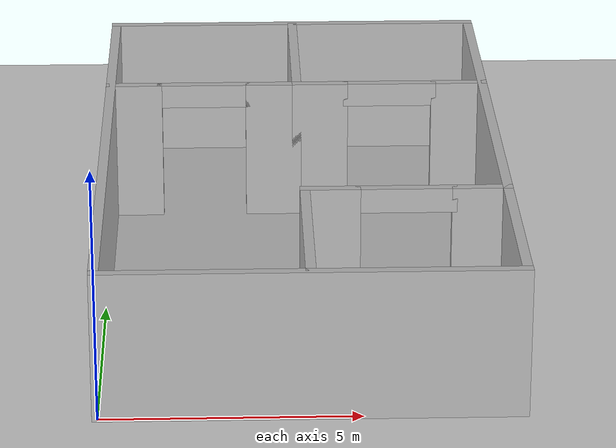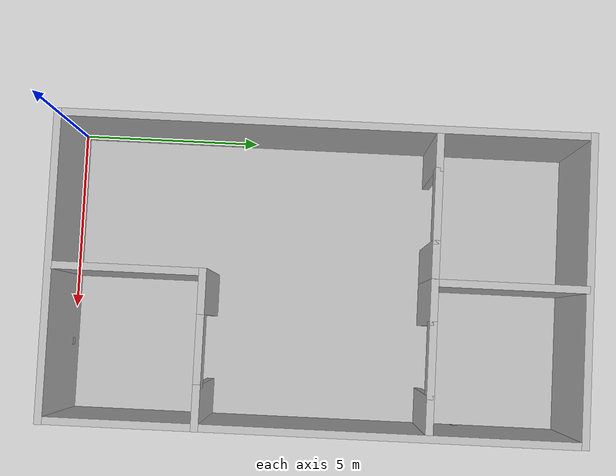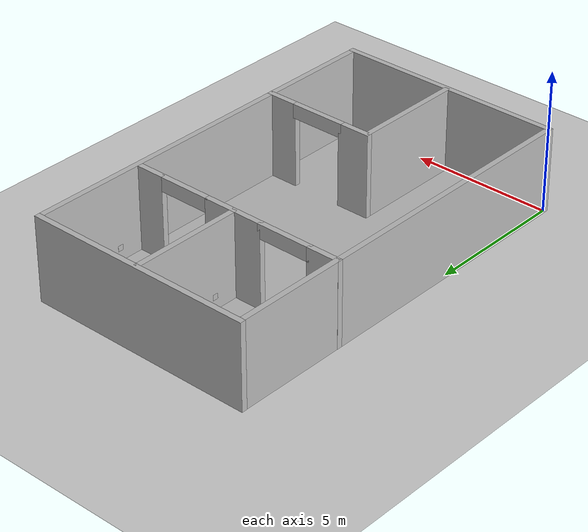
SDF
<sdf version="1.7">
 <world name="nre_home">
  <scene><shadows>0</shadows></scene>
  <physics type="ode">
   <gravity>0 0 -9.81</gravity>
   <ode>
    <solver><type>quick</type><iters>20</iters><sor>1.0</sor></solver>
    <constraints>
     <cfm>0.0</cfm>
     <erp>1.0</erp>
     <contact_max_correcting_vel>100.0</contact_max_correcting_vel>
     <contact_surface_layer>0.0</contact_surface_layer>
    </constraints>
   </ode>
   <real_time_update_rate>1000</real_time_update_rate>
   <max_step_size>0.001</max_step_size>
  </physics>
  <include><uri>model://sun</uri></include>
  <light type="directional" name="directional1">
   <pose>0 14 5 -1 0.4 1.5</pose>
   <diffuse>50 50 50 1</diffuse>
   <specular>.1 .1 .1 1</specular>
   <attenuation>
    <range>20</range>
    <linear>0.2</linear>
    <constant>0.8</constant>
    <quadratic>0.01</quadratic>
   </attenuation>
   <cast_shadows>false</cast_shadows>
  </light>
  <light type="directional" name="directional2">
   <pose>8 0 5 1 0.4 0</pose>
   <diffuse>50 50 50 1</diffuse>
   <specular>.1 .1 .1 1</specular>
   <attenuation>
    <range>20</range>
    <linear>0.2</linear>
    <constant>0.8</constant>
    <quadratic>0.01</quadratic>
   </attenuation>
   <cast_shadows>false</cast_shadows>
  </light>
  <light type="directional" name="directional3">
   <pose>0 0 5 0.75 0 -0.5</pose>
   <diffuse>25 25 25 1</diffuse>
   <specular>.1 .1 .1 1</specular>
   <attenuation>
    <range>20</range>
    <linear>0.2</linear>
    <constant>0.8</constant>
    <quadratic>0.01</quadratic>
   </attenuation>
   <cast_shadows>false</cast_shadows>
  </light>
  <light type="directional" name="directional4">
   <pose>8 14 5 -1 0.4 0</pose>
   <diffuse>25 25 25 1</diffuse>
   <specular>.1 .1 .1 1</specular>
   <attenuation>
    <range>20</range>
    <linear>0.2</linear>
    <constant>0.8</constant>
    <quadratic>0.01</quadratic>
   </attenuation>
   <cast_shadows>false</cast_shadows>
  </light>
  <include><uri>model://ground_plane</uri></include>
  <include><uri>model://new_wall_0</uri><name>ext_wall_0</name><pose>4 0 0 0 0 0</pose></include>
  <include><uri>model://new_wall_0</uri><name>ext_wall_1</name><pose>4 14 0 0 0 0</pose></include>
  <include><uri>model://new_wall_1</uri><name>ext_wall_2</name><pose>0 7 0 0 0 1.57</pose></include>
  <include><uri>model://new_wall_1</uri><name>ext_wall_3</name><pose>8 7 0 0 0 1.57</pose></include>
  <include><uri>model://new_wall_2</uri><name>int_wall_0</name><pose>4 12 0 0 0 1.57</pose></include>
  <include><uri>model://new_wall_2</uri><name>int_wall_1</name><pose>4 2 0 0 0 1.57</pose></include>
  <include><uri>model://new_door_wall</uri><name>door_wall_1</name><pose>4.5 4 0 0 0 0</pose></include>
  <include><uri>model://new_door_wall</uri><name>door_wall_2</name><pose>7.5 4 0 0 0 0</pose></include>
  <include><uri>model://new_door_wall</uri><name>door_wall_3</name><pose>4.5 10 0 0 0 0</pose></include>
  <include><uri>model://new_door_wall</uri><name>door_wall_4</name><pose>7.5 10 0 0 0 0</pose></include>
  <include><uri>model://new_door_wall</uri><name>door_wall_5</name><pose>0.5 10 0 0 0 0</pose></include>
  <include><uri>model://new_door_wall</uri><name>door_wall_6</name><pose>3.5 10 0 0 0 0</pose></include>
  <include><uri>model://new_door_up</uri><name>door_up_0</name><pose>6 4 0 0 0 0</pose></include>
  <include><uri>model://new_door_up</uri><name>door_up_1</name><pose>2 10 0 0 0 0</pose></include>
  <include><uri>model://new_door_up</uri><name>door_up_2</name><pose>6 10 0 0 0 0</pose></include>
  <include><uri>model://marker1</uri><name>marker1</name><pose>3.87 11 0 0 0 1.57</pose></include>
  <include><uri>model://marker2</uri><name>marker2</name><pose>7.87 11 0 0 0 1.57</pose></include>
  <include><uri>model://marker3</uri><name>marker3</name><pose>6 0.1 0 0 0 3.14</pose></include>
  <include><uri>model://floor</uri><name>ground_floor</name><pose>4 7 0.006 0 0 0</pose></include>
 </world>
</sdf>

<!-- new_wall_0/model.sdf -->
<sdf version="1.7">

    <model name="new_wall_0">
        <static>true</static>
        <link name="link">
            <pose>0 0 1.5 0 0 0</pose>
            <collision name="collision">
                <geometry>
                    <box>
                        <size>8.2 0.2 3.0</size>
                    </box>
                </geometry>
            </collision>

            <visual name="visual">
                <cast_shadows>false</cast_shadows>
                <geometry>
                    <box>
                        <size>8.2 0.2 3.0</size>
                    </box>
                </geometry>
            </visual>
        </link>
    </model>

</sdf>

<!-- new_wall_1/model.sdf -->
<sdf version="1.7">

    <model name="new_wall_1">
        <static>true</static>
        <link name="link">
            <pose>0 0 1.5 0 0 0</pose>
            <collision name="collision">
                <geometry>
                    <box>
                        <size>13.8 0.2 3.0</size>
                    </box>
                </geometry>
            </collision>

            <visual name="visual">
                <cast_shadows>false</cast_shadows>
                <geometry>
                    <box>
                        <size>13.8 0.2 3.0</size>
                    </box>
                </geometry>

            </visual>
        </link>
    </model>

</sdf>

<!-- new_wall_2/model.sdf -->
<sdf version="1.7">

    <model name="new_wall_2">
        <static>true</static>
        <link name="link">
            <pose>0 0 1.5 0 0 0</pose>
            <collision name="collision">
                <geometry>
                    <box>
                        <size>4 0.2 3.0</size>
                    </box>
                </geometry>
            </collision>

            <visual name="visual">
                <cast_shadows>false</cast_shadows>
                <geometry>
                    <box>
                        <size>4 0.2 3.0</size>
                    </box>
                </geometry>
            </visual>
        </link>
    </model>

</sdf>

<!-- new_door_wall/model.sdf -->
<sdf version="1.7">

    <model name="door_wall_1">
        <static>true</static>
        <link name="link">
            <pose>0 0 1.5 0 0 0</pose>
            <collision name="collision">
                <geometry>
                    <box>
                        <size>1.2 0.2 3.0</size>
                    </box>
                </geometry>
            </collision>

            <visual name="visual">
                <cast_shadows>false</cast_shadows>
                <geometry>
                    <box>
                        <size>1.2 0.2 3.0</size>
                    </box>
                </geometry>
            </visual>
        </link>
    </model>

</sdf>

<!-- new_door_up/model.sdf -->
<sdf version="1.7">

    <model name="new_door_up">
        <static>true</static>
        <link name="link">
            <pose>0 0 2.75 0 0 0</pose>
            <collision name="collision">
                <geometry>
                    <box>
                        <size>2.0 0.2 0.5</size>
                    </box>
                </geometry>
            </collision>

            <visual name="visual">
                <cast_shadows>false</cast_shadows>
                <geometry>
                    <box>
                        <size>2.0 0.2 0.5</size>
                    </box>
                </geometry>
            </visual>
        </link>
    </model>

</sdf>

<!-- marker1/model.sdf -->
<sdf version="1.7">

    <model name="maker_tile_1">
        <static>true</static>
        <link name="link">
            <pose>0 0 0.5 0 0 0</pose>
            <collision name="collision">
                <geometry>
                    <box>
                        <size>0.2 0.001 0.2</size>
                    </box>
                </geometry>
            </collision>

            <visual name="visual">
                <cast_shadows>false</cast_shadows>
                <geometry>
                    <box>
                        <size>0.2 0.001 0.2</size>
                    </box>
                </geometry>
                <material>
                    <script>
                        <uri>model://marker1/materials/scripts</uri>
                        <uri>model://marker1/materials/textures</uri>
                        <name>vrc/markerMaterial</name>
                    </script>
                </material>
            </visual>
        </link>
    </model>

</sdf>

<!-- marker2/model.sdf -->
<sdf version="1.7">

    <model name="maker_tile_2">
        <static>true</static>
        <link name="link">
            <pose>0 0 0.5 0 0 0</pose>
            <collision name="collision">
                <geometry>
                    <box>
                        <size>0.2 0.001 0.2</size>
                    </box>
                </geometry>
            </collision>

            <visual name="visual">
                <cast_shadows>false</cast_shadows>
                <geometry>
                    <box>
                        <size>0.2 0.001 0.2</size>
                    </box>
                </geometry>
                <material>
                    <script>
                        <uri>model://marker2/materials/scripts</uri>
                        <uri>model://marker2/materials/textures</uri>
                        <name>vrc/markerMaterial2</name>
                    </script>
                </material>
            </visual>
        </link>
    </model>

</sdf>

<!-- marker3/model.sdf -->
<sdf version="1.7">

    <model name="maker_tile_3">
        <static>true</static>
        <link name="link">
            <pose>0 0 0.5 0 0 0</pose>
            <collision name="collision">
                <geometry>
                    <box>
                        <size>0.2 0.001 0.2</size>
                    </box>
                </geometry>
            </collision>

            <visual name="visual">
                <cast_shadows>false</cast_shadows>
                <geometry>
                    <box>
                        <size>0.2 0.001 0.2</size>
                    </box>
                </geometry>
                <material>
                    <script>
                        <uri>model://marker3/materials/scripts</uri>
                        <uri>model://marker3/materials/textures</uri>
                        <name>vrc/markerMaterial3</name>
                    </script>
                </material>
            </visual>
        </link>
    </model>

</sdf>

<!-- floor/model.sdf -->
<sdf version="1.7">
    <model name="ground_floor">
        <static>true</static>
        <link name="link">

            <visual name="visual">
                <cast_shadows>false</cast_shadows>
                <geometry>
                    <box>
                        <size>8.0 14.0 0.000001</size>
                    </box>
                </geometry>
                <material>
                     <script>
                        <uri>model://floor/materials/scripts</uri>
                        <uri>model://floor/materials/textures</uri>
                        <name>vrc/groundfloor</name>
                    </script>
                </material>
            </visual>
        </link>
    </model>
</sdf>
